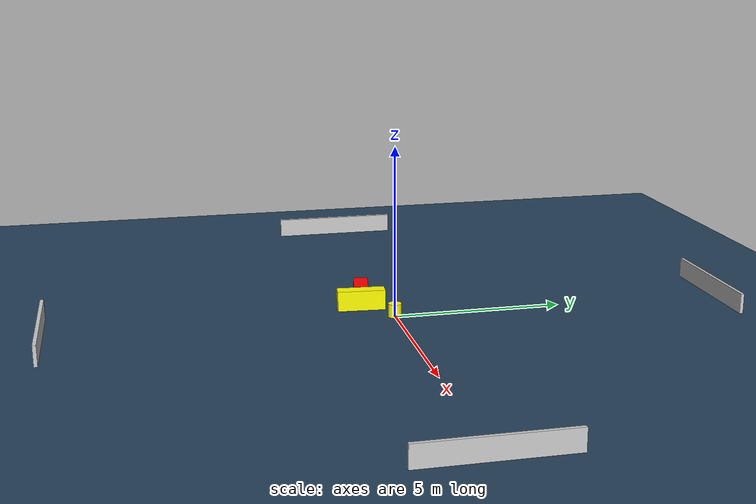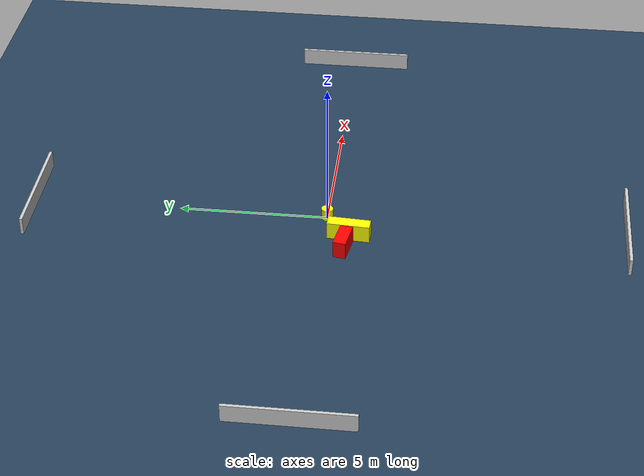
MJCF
<?xml version="1.0" ?>
<mujoco model="generated_environment">
  <option timestep="0.01" integrator="RK4" cone="elliptic"/>
  <default>
    <geom density="1"/>
  </default>
  <asset>
    <texture builtin="gradient" height="3072" name="skybox" rgb1="0.3 0.5 0.7" rgb2="0 0 0" type="skybox" width="512"/>
    <texture builtin="checker" height="300" name="groundplane" rgb1="0.2 0.3 0.4" rgb2="0.1 0.2 0.3" type="2d" width="300"/>
    <material name="groundplane" reflectance="0.2" texrepeat="5 5" texture="groundplane"/>
  </asset>
  <worldbody>
    <light dir="0 0 -1" directional="true" pos="0 0 1.5"/>
    <geom condim="3" friction="0.5 0.005 0.001" material="groundplane" name="floor" pos="0 0 0" size="0 0 0.05" type="plane"/>
    <body name="walls">
      <geom name="wall_1" condim="4" pos="-10.0 0.0 0.3" rgba="0.800000011920929 0.800000011920929 0.800000011920929 1.0" size="0.05 2.0 0.3" type="box"/>
      <geom name="wall_2" condim="4" pos="10.0 0.0 0.3" rgba="0.800000011920929 0.800000011920929 0.800000011920929 1.0" size="0.05 2.0 0.3" type="box"/>
      <geom name="wall_3" condim="4" pos="0.0 -10.0 0.3" rgba="0.800000011920929 0.800000011920929 0.800000011920929 1.0" size="2.0 0.05 0.3" type="box"/>
      <geom name="wall_4" condim="4" pos="0.0 10.0 0.3" rgba="0.800000011920929 0.800000011920929 0.800000011920929 1.0" size="2.0 0.05 0.3" type="box"/>
    </body>
    <body name="robot">
      <joint name="joint_x" type="slide" pos="0 0 0" axis="1 0 0"/>
      <joint name="joint_y" type="slide" pos="0 0 0" axis="0 1 0"/>
      <geom name="robot" type="cylinder" pos="0.0 0.0 0.2" size="0.2 0.2 0.0" mass="5.0" friction="1.0 0.005 0.0001" condim="4" rgba="1.0 1.0 0.0 1.0"/>
    </body>
    <body name="obstacle_1_movable">
      <geom name="obstacle_1_movable" condim="4" pos="-0.9512617353844844 -0.8184162937099506 0.3" euler="0 0 86.14681147977811" friction="0.0 0.005 0.001" rgba="1.0 1.0 0.0 1.0" size="0.7105665695156043 0.2086050370141697 0.3" type="box" mass="0.1"/>
      <joint type="free"/>
    </body>
    <body name="obstacle_2_static">
      <geom name="obstacle_2_static" condim="4" pos="-1.6544900918659153 -0.6882628541568376 0.3" euler="0 0 80.3042787090396" friction="0.0 0.005 0.001" rgba="1.0 0.0 0.0 1.0" size="0.21462468280989166 0.48120200303343236 0.3" type="box"/>
    </body>
  </worldbody>
  <actuator>
    <motor name="actuator_x" joint="joint_x" gear="1" ctrlrange="-1 1"/>
    <motor name="actuator_y" joint="joint_y" gear="1" ctrlrange="-1 1"/>
  </actuator>
</mujoco>
